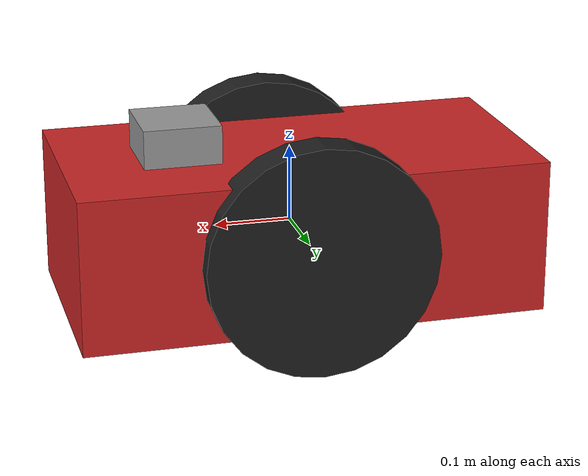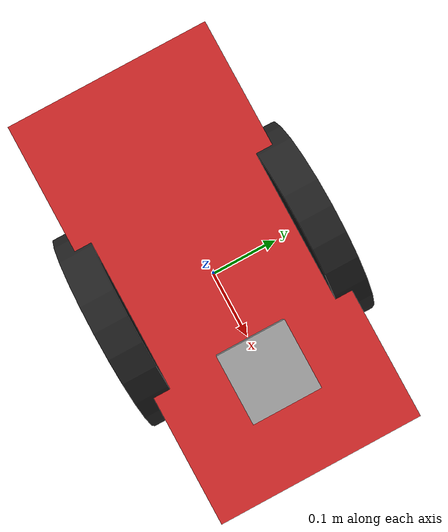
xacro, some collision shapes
<robot name="my_robot" xmlns:xacro="http://www.ros.org/wiki/xacro">
<xacro:include filename="$(find my_robot2)/urdf/my_robot.gazebo" />
 <link name="robot_footprint"></link>

 <joint name="robot_footprint_joint" type="fixed">
   <origin xyz="0 0 0" rpy="0 0 0" />
   <parent link="robot_footprint"/>
   <child link="chassis" />
 </joint>

 <link name='chassis'>
   <pose>0 0 0.1 0 0 0</pose>
   <inertial>
     <mass value="15.0"/>
     <origin xyz="0.0 0 0" rpy=" 0 0 0"/>
     <inertia
       ixx="0.1" ixy="0" ixz="0"
       iyy="0.1" iyz="0"
       izz="0.1"
     />
   </inertial>

   <collision name='collision'>
     <origin xyz="0 0 0" rpy=" 0 0 0"/>
     <geometry>
       <box size=".6 .3 .2"/>
     </geometry>
   </collision>

   <visual name='chassis_visual'>
     <origin xyz="0 0 0" rpy=" 0 0 0"/>
     <geometry>
       <box size=".6 .3 .2"/>
     </geometry>
   </visual>

   <collision name='back_caster_collision'>
     <origin xyz="-0.15 0 -0.05" rpy=" 0 0 0"/>
     <geometry>
       <sphere radius="0.0499"/>
     </geometry>
   </collision>

   <visual name='back_caster_visual'>
     <origin xyz="-0.15 0 -0.05" rpy=" 0 0 0"/>
     <geometry>
       <sphere radius="0.05"/>
     </geometry>
   </visual>

   <collision name='front_caster_collision'>
     <origin xyz="0.15 0 -0.05" rpy=" 0 0 0"/>
     <geometry>
       <sphere radius="0.0499"/>
     </geometry>
   </collision>

   <visual name='front_caster_visual'>
     <origin xyz="0.15 0 -0.05" rpy=" 0 0 0"/>
     <geometry>
       <sphere radius="0.05"/>
     </geometry>
   </visual>

 </link>
<gazebo reference="chassis">
   <material>Gazebo/Red</material>
  </gazebo>

 <!-- Left Wheel -->
 <link name="left_wheel">
   <inertial>
     <mass value="5.0"/>
     <origin xyz="0 0 0" rpy="0 1.5707 1.5707"/>
     <inertia
       ixx="0.1" ixy="0" ixz="0"
       iyy="0.1" iyz="0"
       izz="0.1"
     />
   </inertial>

   <collision>
     <origin xyz="0 0 0" rpy="0 1.5707 1.5707"/>
     <geometry>
       <cylinder radius="0.15" length="0.05"/>
     </geometry>
   </collision>

   <visual>
     <origin xyz="0 0 0" rpy="0 1.5707 1.5707"/>
     <geometry>
       <cylinder radius="0.15" length="0.05"/>
     </geometry>
   </visual>
 </link>

 <gazebo reference="left_wheel">
   <material>Gazebo/Black</material>
  </gazebo>

 <!-- Right Wheel -->
 <link name="right_wheel">
   <inertial>
     <mass value="5.0"/>
     <origin xyz="0 0 0" rpy="0 1.5707 1.5707"/>
     <inertia
       ixx="0.1" ixy="0" ixz="0"
       iyy="0.1" iyz="0"
       izz="0.1"
     />
   </inertial>

   <collision>
     <origin xyz="0 0 0" rpy="0 1.5707 1.5707"/>
     <geometry>
       <cylinder radius="0.15" length="0.05"/>
     </geometry>
   </collision>

   <visual>
     <origin xyz="0 0 0" rpy="0 1.5707 1.5707"/>
     <geometry>
       <cylinder radius="0.15" length="0.05"/>
     </geometry>
   </visual>
 </link>
<gazebo reference="right_wheel">
   <material>Gazebo/Black</material>
  </gazebo>

 <joint type="continuous" name="left_wheel_hinge">
   <origin xyz="0 0.15 0" rpy="0 0 0"/>
   <child link="left_wheel"/>
   <parent link="chassis"/>
   <axis xyz="0 1 0" rpy="0 0 0"/>
   <limit effort="10000" velocity="1000"/>
   <dynamics damping="1.0" friction="1.0"/>
 </joint>

 <joint type="continuous" name="right_wheel_hinge">
   <origin xyz="0 -0.15 0" rpy="0 0 0"/>
   <child link="right_wheel"/>
   <parent link="chassis"/>
   <axis xyz="0 1 0" rpy="0 0 0"/>
   <limit effort="10000" velocity="1000"/>
   <dynamics damping="1.0" friction="1.0"/>
 </joint>

 <!-- Camera Link -->
 <link name="camera">
   <inertial>
     <mass value="0.1"/>
     <origin xyz="0 0 0" rpy="0 0 0"/>
     <inertia
       ixx="1e-6" ixy="0" ixz="0"
       iyy="1e-6" iyz="0"
       izz="1e-6"
     />
   </inertial>

   <collision>
     <origin xyz="0 0 0" rpy="0 0 0"/>
     <geometry>
       <box size="0.05 0.05 0.05"/>
     </geometry>
   </collision>

   <visual>
     <origin xyz="0 0 0" rpy="0 0 0"/>
     <geometry>
       <box size="0.05 0.05 0.05"/>
     </geometry>
   </visual>
 </link>
<gazebo reference="camera">
   <material>Gazebo/Brown</material>
  </gazebo>

 <joint name="camera_joint" type="fixed">
   <origin xyz="0.2 0 0" rpy="0 0 0"/>
   <parent link="chassis"/>
   <child link="camera"/>
   <axis xyz="0 1 0"/>
 </joint>

 <!-- Hokuyo Lidar Link -->
 <link name="hokuyo">
   <inertial>
     <mass value="1e-5"/>
     <origin xyz="0 0 0" rpy="0 0 0"/>
     <inertia
       ixx="1e-6" ixy="0" ixz="0"
       iyy="1e-6" iyz="0"
       izz="1e-6"
     />
   </inertial>

   <collision>
     <origin xyz="0 0 0" rpy="0 0 0"/>
     <geometry>
       <box size="0.1 0.1 0.1"/>
     </geometry>
   </collision>

   <visual>
     <origin xyz="0 0 0" rpy="0 0 0"/>
     <geometry>
       <mesh filename="package://my_robot2/meshes/hokuyo.dae"/>
     </geometry>
   </visual>
 </link>
<gazebo reference="hokuyo">
   <material>Gazebo/Gray</material>
  </gazebo>
 <joint name="hokuyo_joint" type="fixed">
   <origin xyz="0.15 0 0.1" rpy="0 0 0"/>
   <parent link="chassis"/>
   <child link="hokuyo"/>
   <axis xyz="0 1 0"/>
 </joint>

</robot>
